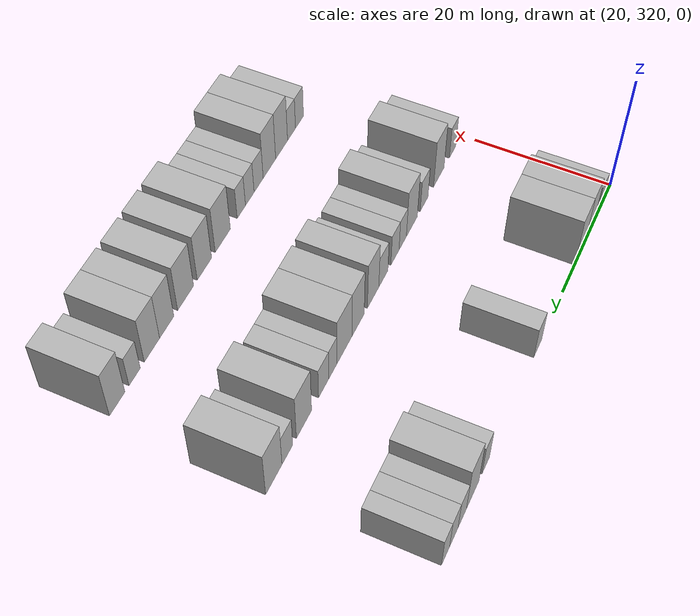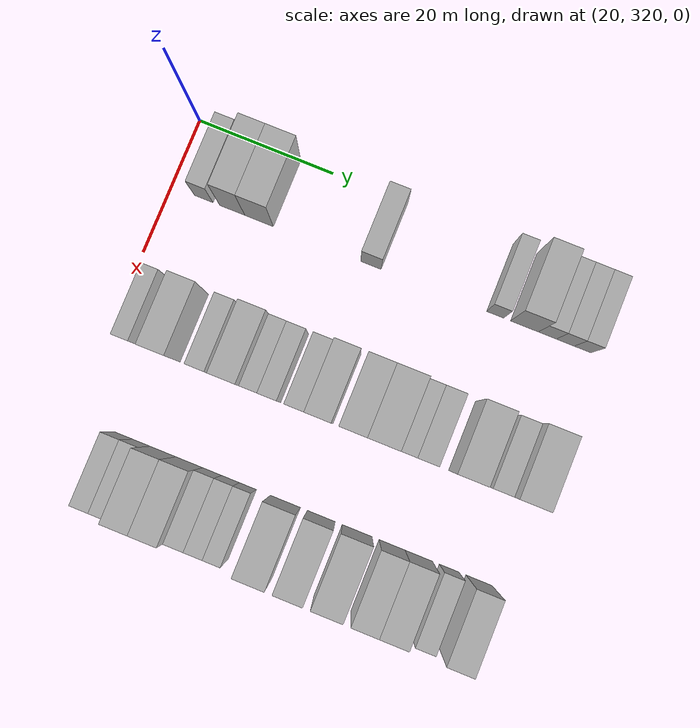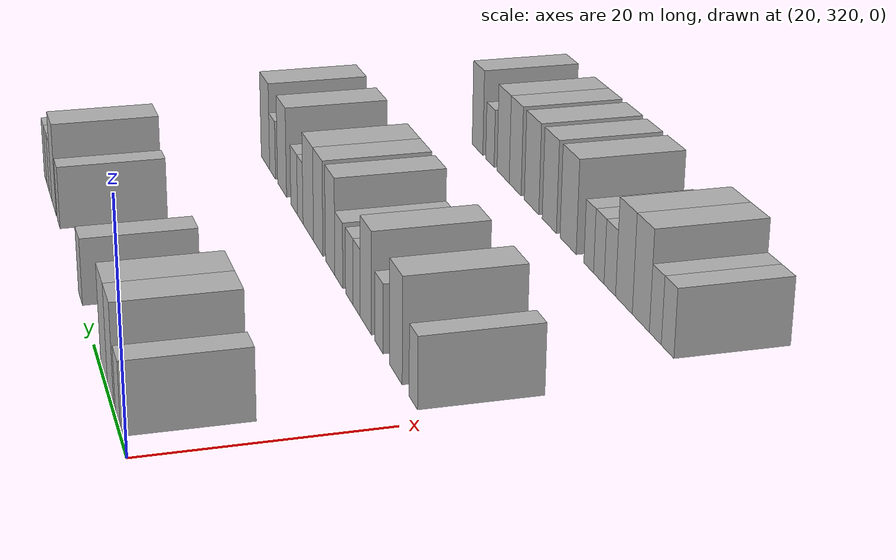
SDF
<sdf version="1.6">
 <world name="default">
  <model name="building_171">
   <static>1</static>
   <pose>25.0000 324.8100 0 0.000000 0.000000 0.000000</pose>
   <link name="link">
    <pose>0 0 3.00 0 0 0</pose>
    <collision name="collision"><geometry><box><size>10.0000 2.7737 6.0000</size></box></geometry></collision>
    <visual name="visual">
     <cast_shadows>0</cast_shadows>
     <geometry><box><size>10.0000 2.7737 6.0000</size></box></geometry>
     <material>
      <script>
       <uri>model://HANNAS_wall/materials/scripts</uri>
       <uri>model://HANNAS_wall/materials/textures</uri>
       <name>vrc/HANNAS_wall</name>
      </script>
     </material>
    </visual>
   </link>
  </model>
  <model name="building_172">
   <static>1</static>
   <pose>25.0000 329.0624 0 0.000000 0.000000 0.000000</pose>
   <link name="link">
    <pose>0 0 4.50 0 0 0</pose>
    <collision name="collision"><geometry><box><size>10.0000 3.7311 9.0000</size></box></geometry></collision>
    <visual name="visual">
     <cast_shadows>0</cast_shadows>
     <geometry><box><size>10.0000 3.7311 9.0000</size></box></geometry>
     <material>
      <script>
       <uri>model://HANNAS_wall/materials/scripts</uri>
       <uri>model://HANNAS_wall/materials/textures</uri>
       <name>vrc/HANNAS_wall</name>
      </script>
     </material>
    </visual>
   </link>
  </model>
  <model name="building_173">
   <static>1</static>
   <pose>25.0000 333.0505 0 0.000000 0.000000 0.000000</pose>
   <link name="link">
    <pose>0 0 4.50 0 0 0</pose>
    <collision name="collision"><geometry><box><size>10.0000 4.2452 9.0000</size></box></geometry></collision>
    <visual name="visual">
     <cast_shadows>0</cast_shadows>
     <geometry><box><size>10.0000 4.2452 9.0000</size></box></geometry>
     <material>
      <script>
       <uri>model://HANNAS_wall/materials/scripts</uri>
       <uri>model://HANNAS_wall/materials/textures</uri>
       <name>vrc/HANNAS_wall</name>
      </script>
     </material>
    </visual>
   </link>
  </model>
  <model name="building_174">
   <static>1</static>
   <pose>25.0000 349.6298 0 0.000000 0.000000 0.000000</pose>
   <link name="link">
    <pose>0 0 3.00 0 0 0</pose>
    <collision name="collision"><geometry><box><size>10.0000 2.9711 6.0000</size></box></geometry></collision>
    <visual name="visual">
     <cast_shadows>0</cast_shadows>
     <geometry><box><size>10.0000 2.9711 6.0000</size></box></geometry>
     <material>
      <script>
       <uri>model://HANNAS_wall/materials/scripts</uri>
       <uri>model://HANNAS_wall/materials/textures</uri>
       <name>vrc/HANNAS_wall</name>
      </script>
     </material>
    </visual>
   </link>
  </model>
  <model name="building_175">
   <static>1</static>
   <pose>25.0000 367.8563 0 0.000000 0.000000 0.000000</pose>
   <link name="link">
    <pose>0 0 3.00 0 0 0</pose>
    <collision name="collision"><geometry><box><size>10.0000 2.4939 6.0000</size></box></geometry></collision>
    <visual name="visual">
     <cast_shadows>0</cast_shadows>
     <geometry><box><size>10.0000 2.4939 6.0000</size></box></geometry>
     <material>
      <script>
       <uri>model://HANNAS_wall/materials/scripts</uri>
       <uri>model://HANNAS_wall/materials/textures</uri>
       <name>vrc/HANNAS_wall</name>
      </script>
     </material>
    </visual>
   </link>
  </model>
  <model name="building_176">
   <static>1</static>
   <pose>25.0000 372.1307 0 0.000000 0.000000 0.000000</pose>
   <link name="link">
    <pose>0 0 4.50 0 0 0</pose>
    <collision name="collision"><geometry><box><size>10.0000 4.0548 9.0000</size></box></geometry></collision>
    <visual name="visual">
     <cast_shadows>0</cast_shadows>
     <geometry><box><size>10.0000 4.0548 9.0000</size></box></geometry>
     <material>
      <script>
       <uri>model://HANNAS_wall/materials/scripts</uri>
       <uri>model://HANNAS_wall/materials/textures</uri>
       <name>vrc/HANNAS_wall</name>
      </script>
     </material>
    </visual>
   </link>
  </model>
  <model name="building_177">
   <static>1</static>
   <pose>25.0000 375.4648 0 0.000000 0.000000 0.000000</pose>
   <link name="link">
    <pose>0 0 3.00 0 0 0</pose>
    <collision name="collision"><geometry><box><size>10.0000 2.6135 6.0000</size></box></geometry></collision>
    <visual name="visual">
     <cast_shadows>0</cast_shadows>
     <geometry><box><size>10.0000 2.6135 6.0000</size></box></geometry>
     <material>
      <script>
       <uri>model://HANNAS_wall/materials/scripts</uri>
       <uri>model://HANNAS_wall/materials/textures</uri>
       <name>vrc/HANNAS_wall</name>
      </script>
     </material>
    </visual>
   </link>
  </model>
  <model name="building_178">
   <static>1</static>
   <pose>25.0000 378.0670 0 0.000000 0.000000 0.000000</pose>
   <link name="link">
    <pose>0 0 3.00 0 0 0</pose>
    <collision name="collision"><geometry><box><size>10.0000 2.5909 6.0000</size></box></geometry></collision>
    <visual name="visual">
     <cast_shadows>0</cast_shadows>
     <geometry><box><size>10.0000 2.5909 6.0000</size></box></geometry>
     <material>
      <script>
       <uri>model://HANNAS_wall/materials/scripts</uri>
       <uri>model://HANNAS_wall/materials/textures</uri>
       <name>vrc/HANNAS_wall</name>
      </script>
     </material>
    </visual>
   </link>
  </model>
  <model name="building_179">
   <static>1</static>
   <pose>25.0000 380.5888 0 0.000000 0.000000 0.000000</pose>
   <link name="link">
    <pose>0 0 3.00 0 0 0</pose>
    <collision name="collision"><geometry><box><size>10.0000 2.4526 6.0000</size></box></geometry></collision>
    <visual name="visual">
     <cast_shadows>0</cast_shadows>
     <geometry><box><size>10.0000 2.4526 6.0000</size></box></geometry>
     <material>
      <script>
       <uri>model://HANNAS_wall/materials/scripts</uri>
       <uri>model://HANNAS_wall/materials/textures</uri>
       <name>vrc/HANNAS_wall</name>
      </script>
     </material>
    </visual>
   </link>
  </model>
  <model name="building_350">
   <static>1</static>
   <pose>47.0000 323.4926 0 0.000000 0.000000 0.000000</pose>
   <link name="link">
    <pose>0 0 3.00 0 0 0</pose>
    <collision name="collision"><geometry><box><size>10.0000 2.4269 6.0000</size></box></geometry></collision>
    <visual name="visual">
     <cast_shadows>0</cast_shadows>
     <geometry><box><size>10.0000 2.4269 6.0000</size></box></geometry>
     <material>
      <script>
       <uri>model://HANNAS_wall/materials/scripts</uri>
       <uri>model://HANNAS_wall/materials/textures</uri>
       <name>vrc/HANNAS_wall</name>
      </script>
     </material>
    </visual>
   </link>
  </model>
  <model name="building_351">
   <static>1</static>
   <pose>47.0000 328.6227 0 0.000000 0.000000 0.000000</pose>
   <link name="link">
    <pose>0 0 4.50 0 0 0</pose>
    <collision name="collision"><geometry><box><size>10.0000 3.8331 9.0000</size></box></geometry></collision>
    <visual name="visual">
     <cast_shadows>0</cast_shadows>
     <geometry><box><size>10.0000 3.8331 9.0000</size></box></geometry>
     <material>
      <script>
       <uri>model://HANNAS_wall/materials/scripts</uri>
       <uri>model://HANNAS_wall/materials/textures</uri>
       <name>vrc/HANNAS_wall</name>
      </script>
     </material>
    </visual>
   </link>
  </model>
  <model name="building_352">
   <static>1</static>
   <pose>47.0000 333.9192 0 0.000000 0.000000 0.000000</pose>
   <link name="link">
    <pose>0 0 3.00 0 0 0</pose>
    <collision name="collision"><geometry><box><size>10.0000 2.7599 6.0000</size></box></geometry></collision>
    <visual name="visual">
     <cast_shadows>0</cast_shadows>
     <geometry><box><size>10.0000 2.7599 6.0000</size></box></geometry>
     <material>
      <script>
       <uri>model://HANNAS_wall/materials/scripts</uri>
       <uri>model://HANNAS_wall/materials/textures</uri>
       <name>vrc/HANNAS_wall</name>
      </script>
     </material>
    </visual>
   </link>
  </model>
  <model name="building_353">
   <static>1</static>
   <pose>47.0000 338.1962 0 0.000000 0.000000 0.000000</pose>
   <link name="link">
    <pose>0 0 4.50 0 0 0</pose>
    <collision name="collision"><geometry><box><size>10.0000 3.7942 9.0000</size></box></geometry></collision>
    <visual name="visual">
     <cast_shadows>0</cast_shadows>
     <geometry><box><size>10.0000 3.7942 9.0000</size></box></geometry>
     <material>
      <script>
       <uri>model://HANNAS_wall/materials/scripts</uri>
       <uri>model://HANNAS_wall/materials/textures</uri>
       <name>vrc/HANNAS_wall</name>
      </script>
     </material>
    </visual>
   </link>
  </model>
  <model name="building_354">
   <static>1</static>
   <pose>47.0000 341.3433 0 0.000000 0.000000 0.000000</pose>
   <link name="link">
    <pose>0 0 3.00 0 0 0</pose>
    <collision name="collision"><geometry><box><size>10.0000 2.5001 6.0000</size></box></geometry></collision>
    <visual name="visual">
     <cast_shadows>0</cast_shadows>
     <geometry><box><size>10.0000 2.5001 6.0000</size></box></geometry>
     <material>
      <script>
       <uri>model://HANNAS_wall/materials/scripts</uri>
       <uri>model://HANNAS_wall/materials/textures</uri>
       <name>vrc/HANNAS_wall</name>
      </script>
     </material>
    </visual>
   </link>
  </model>
  <model name="building_355">
   <static>1</static>
   <pose>47.0000 343.9466 0 0.000000 0.000000 0.000000</pose>
   <link name="link">
    <pose>0 0 3.00 0 0 0</pose>
    <collision name="collision"><geometry><box><size>10.0000 2.7065 6.0000</size></box></geometry></collision>
    <visual name="visual">
     <cast_shadows>0</cast_shadows>
     <geometry><box><size>10.0000 2.7065 6.0000</size></box></geometry>
     <material>
      <script>
       <uri>model://HANNAS_wall/materials/scripts</uri>
       <uri>model://HANNAS_wall/materials/textures</uri>
       <name>vrc/HANNAS_wall</name>
      </script>
     </material>
    </visual>
   </link>
  </model>
  <model name="building_356">
   <static>1</static>
   <pose>47.0000 347.7876 0 0.000000 0.000000 0.000000</pose>
   <link name="link">
    <pose>0 0 3.00 0 0 0</pose>
    <collision name="collision"><geometry><box><size>10.0000 2.9754 6.0000</size></box></geometry></collision>
    <visual name="visual">
     <cast_shadows>0</cast_shadows>
     <geometry><box><size>10.0000 2.9754 6.0000</size></box></geometry>
     <material>
      <script>
       <uri>model://HANNAS_wall/materials/scripts</uri>
       <uri>model://HANNAS_wall/materials/textures</uri>
       <name>vrc/HANNAS_wall</name>
      </script>
     </material>
    </visual>
   </link>
  </model>
  <model name="building_357">
   <static>1</static>
   <pose>47.0000 351.0989 0 0.000000 0.000000 0.000000</pose>
   <link name="link">
    <pose>0 0 4.50 0 0 0</pose>
    <collision name="collision"><geometry><box><size>10.0000 3.6473 9.0000</size></box></geometry></collision>
    <visual name="visual">
     <cast_shadows>0</cast_shadows>
     <geometry><box><size>10.0000 3.6473 9.0000</size></box></geometry>
     <material>
      <script>
       <uri>model://HANNAS_wall/materials/scripts</uri>
       <uri>model://HANNAS_wall/materials/textures</uri>
       <name>vrc/HANNAS_wall</name>
      </script>
     </material>
    </visual>
   </link>
  </model>
  <model name="building_358">
   <static>1</static>
   <pose>47.0000 355.8356 0 0.000000 0.000000 0.000000</pose>
   <link name="link">
    <pose>0 0 4.50 0 0 0</pose>
    <collision name="collision"><geometry><box><size>10.0000 3.8260 9.0000</size></box></geometry></collision>
    <visual name="visual">
     <cast_shadows>0</cast_shadows>
     <geometry><box><size>10.0000 3.8260 9.0000</size></box></geometry>
     <material>
      <script>
       <uri>model://HANNAS_wall/materials/scripts</uri>
       <uri>model://HANNAS_wall/materials/textures</uri>
       <name>vrc/HANNAS_wall</name>
      </script>
     </material>
    </visual>
   </link>
  </model>
  <model name="building_359">
   <static>1</static>
   <pose>47.0000 359.9868 0 0.000000 0.000000 0.000000</pose>
   <link name="link">
    <pose>0 0 4.50 0 0 0</pose>
    <collision name="collision"><geometry><box><size>10.0000 4.4764 9.0000</size></box></geometry></collision>
    <visual name="visual">
     <cast_shadows>0</cast_shadows>
     <geometry><box><size>10.0000 4.4764 9.0000</size></box></geometry>
     <material>
      <script>
       <uri>model://HANNAS_wall/materials/scripts</uri>
       <uri>model://HANNAS_wall/materials/textures</uri>
       <name>vrc/HANNAS_wall</name>
      </script>
     </material>
    </visual>
   </link>
  </model>
  <model name="building_360">
   <static>1</static>
   <pose>47.0000 363.4442 0 0.000000 0.000000 0.000000</pose>
   <link name="link">
    <pose>0 0 3.00 0 0 0</pose>
    <collision name="collision"><geometry><box><size>10.0000 2.4384 6.0000</size></box></geometry></collision>
    <visual name="visual">
     <cast_shadows>0</cast_shadows>
     <geometry><box><size>10.0000 2.4384 6.0000</size></box></geometry>
     <material>
      <script>
       <uri>model://HANNAS_wall/materials/scripts</uri>
       <uri>model://HANNAS_wall/materials/textures</uri>
       <name>vrc/HANNAS_wall</name>
      </script>
     </material>
    </visual>
   </link>
  </model>
  <model name="building_361">
   <static>1</static>
   <pose>47.0000 366.1602 0 0.000000 0.000000 0.000000</pose>
   <link name="link">
    <pose>0 0 3.00 0 0 0</pose>
    <collision name="collision"><geometry><box><size>10.0000 2.9937 6.0000</size></box></geometry></collision>
    <visual name="visual">
     <cast_shadows>0</cast_shadows>
     <geometry><box><size>10.0000 2.9937 6.0000</size></box></geometry>
     <material>
      <script>
       <uri>model://HANNAS_wall/materials/scripts</uri>
       <uri>model://HANNAS_wall/materials/textures</uri>
       <name>vrc/HANNAS_wall</name>
      </script>
     </material>
    </visual>
   </link>
  </model>
  <model name="building_362">
   <static>1</static>
   <pose>47.0000 371.7882 0 0.000000 0.000000 0.000000</pose>
   <link name="link">
    <pose>0 0 4.50 0 0 0</pose>
    <collision name="collision"><geometry><box><size>10.0000 4.2623 9.0000</size></box></geometry></collision>
    <visual name="visual">
     <cast_shadows>0</cast_shadows>
     <geometry><box><size>10.0000 4.2623 9.0000</size></box></geometry>
     <material>
      <script>
       <uri>model://HANNAS_wall/materials/scripts</uri>
       <uri>model://HANNAS_wall/materials/textures</uri>
       <name>vrc/HANNAS_wall</name>
      </script>
     </material>
    </visual>
   </link>
  </model>
  <model name="building_363">
   <static>1</static>
   <pose>47.0000 376.3739 0 0.000000 0.000000 0.000000</pose>
   <link name="link">
    <pose>0 0 3.00 0 0 0</pose>
    <collision name="collision"><geometry><box><size>10.0000 2.9090 6.0000</size></box></geometry></collision>
    <visual name="visual">
     <cast_shadows>0</cast_shadows>
     <geometry><box><size>10.0000 2.9090 6.0000</size></box></geometry>
     <material>
      <script>
       <uri>model://HANNAS_wall/materials/scripts</uri>
       <uri>model://HANNAS_wall/materials/textures</uri>
       <name>vrc/HANNAS_wall</name>
      </script>
     </material>
    </visual>
   </link>
  </model>
  <model name="building_364">
   <static>1</static>
   <pose>47.0000 380.0017 0 0.000000 0.000000 0.000000</pose>
   <link name="link">
    <pose>0 0 4.50 0 0 0</pose>
    <collision name="collision"><geometry><box><size>10.0000 4.3467 9.0000</size></box></geometry></collision>
    <visual name="visual">
     <cast_shadows>0</cast_shadows>
     <geometry><box><size>10.0000 4.3467 9.0000</size></box></geometry>
     <material>
      <script>
       <uri>model://HANNAS_wall/materials/scripts</uri>
       <uri>model://HANNAS_wall/materials/textures</uri>
       <name>vrc/HANNAS_wall</name>
      </script>
     </material>
    </visual>
   </link>
  </model>
  <model name="building_535">
   <static>1</static>
   <pose>69.0000 327.3344 0 0.000000 0.000000 0.000000</pose>
   <link name="link">
    <pose>0 0 3.00 0 0 0</pose>
    <collision name="collision"><geometry><box><size>10.0000 2.6322 6.0000</size></box></geometry></collision>
    <visual name="visual">
     <cast_shadows>0</cast_shadows>
     <geometry><box><size>10.0000 2.6322 6.0000</size></box></geometry>
     <material>
      <script>
       <uri>model://HANNAS_wall/materials/scripts</uri>
       <uri>model://HANNAS_wall/materials/textures</uri>
       <name>vrc/HANNAS_wall</name>
      </script>
     </material>
    </visual>
   </link>
  </model>
  <model name="building_536">
   <static>1</static>
   <pose>69.0000 329.9332 0 0.000000 0.000000 0.000000</pose>
   <link name="link">
    <pose>0 0 3.00 0 0 0</pose>
    <collision name="collision"><geometry><box><size>10.0000 2.5656 6.0000</size></box></geometry></collision>
    <visual name="visual">
     <cast_shadows>0</cast_shadows>
     <geometry><box><size>10.0000 2.5656 6.0000</size></box></geometry>
     <material>
      <script>
       <uri>model://HANNAS_wall/materials/scripts</uri>
       <uri>model://HANNAS_wall/materials/textures</uri>
       <name>vrc/HANNAS_wall</name>
      </script>
     </material>
    </visual>
   </link>
  </model>
  <model name="building_537">
   <static>1</static>
   <pose>69.0000 333.1134 0 0.000000 0.000000 0.000000</pose>
   <link name="link">
    <pose>0 0 4.50 0 0 0</pose>
    <collision name="collision"><geometry><box><size>10.0000 3.7947 9.0000</size></box></geometry></collision>
    <visual name="visual">
     <cast_shadows>0</cast_shadows>
     <geometry><box><size>10.0000 3.7947 9.0000</size></box></geometry>
     <material>
      <script>
       <uri>model://HANNAS_wall/materials/scripts</uri>
       <uri>model://HANNAS_wall/materials/textures</uri>
       <name>vrc/HANNAS_wall</name>
      </script>
     </material>
    </visual>
   </link>
  </model>
  <model name="building_538">
   <static>1</static>
   <pose>69.0000 336.9512 0 0.000000 0.000000 0.000000</pose>
   <link name="link">
    <pose>0 0 4.50 0 0 0</pose>
    <collision name="collision"><geometry><box><size>10.0000 3.8808 9.0000</size></box></geometry></collision>
    <visual name="visual">
     <cast_shadows>0</cast_shadows>
     <geometry><box><size>10.0000 3.8808 9.0000</size></box></geometry>
     <material>
      <script>
       <uri>model://HANNAS_wall/materials/scripts</uri>
       <uri>model://HANNAS_wall/materials/textures</uri>
       <name>vrc/HANNAS_wall</name>
      </script>
     </material>
    </visual>
   </link>
  </model>
  <model name="building_539">
   <static>1</static>
   <pose>69.0000 340.2825 0 0.000000 0.000000 0.000000</pose>
   <link name="link">
    <pose>0 0 3.00 0 0 0</pose>
    <collision name="collision"><geometry><box><size>10.0000 2.7818 6.0000</size></box></geometry></collision>
    <visual name="visual">
     <cast_shadows>0</cast_shadows>
     <geometry><box><size>10.0000 2.7818 6.0000</size></box></geometry>
     <material>
      <script>
       <uri>model://HANNAS_wall/materials/scripts</uri>
       <uri>model://HANNAS_wall/materials/textures</uri>
       <name>vrc/HANNAS_wall</name>
      </script>
     </material>
    </visual>
   </link>
  </model>
  <model name="building_540">
   <static>1</static>
   <pose>69.0000 342.9698 0 0.000000 0.000000 0.000000</pose>
   <link name="link">
    <pose>0 0 3.00 0 0 0</pose>
    <collision name="collision"><geometry><box><size>10.0000 2.5928 6.0000</size></box></geometry></collision>
    <visual name="visual">
     <cast_shadows>0</cast_shadows>
     <geometry><box><size>10.0000 2.5928 6.0000</size></box></geometry>
     <material>
      <script>
       <uri>model://HANNAS_wall/materials/scripts</uri>
       <uri>model://HANNAS_wall/materials/textures</uri>
       <name>vrc/HANNAS_wall</name>
      </script>
     </material>
    </visual>
   </link>
  </model>
  <model name="building_541">
   <static>1</static>
   <pose>69.0000 345.4951 0 0.000000 0.000000 0.000000</pose>
   <link name="link">
    <pose>0 0 3.00 0 0 0</pose>
    <collision name="collision"><geometry><box><size>10.0000 2.4579 6.0000</size></box></geometry></collision>
    <visual name="visual">
     <cast_shadows>0</cast_shadows>
     <geometry><box><size>10.0000 2.4579 6.0000</size></box></geometry>
     <material>
      <script>
       <uri>model://HANNAS_wall/materials/scripts</uri>
       <uri>model://HANNAS_wall/materials/textures</uri>
       <name>vrc/HANNAS_wall</name>
      </script>
     </material>
    </visual>
   </link>
  </model>
  <model name="building_542">
   <static>1</static>
   <pose>69.0000 350.9092 0 0.000000 0.000000 0.000000</pose>
   <link name="link">
    <pose>0 0 4.50 0 0 0</pose>
    <collision name="collision"><geometry><box><size>10.0000 4.3702 9.0000</size></box></geometry></collision>
    <visual name="visual">
     <cast_shadows>0</cast_shadows>
     <geometry><box><size>10.0000 4.3702 9.0000</size></box></geometry>
     <material>
      <script>
       <uri>model://HANNAS_wall/materials/scripts</uri>
       <uri>model://HANNAS_wall/materials/textures</uri>
       <name>vrc/HANNAS_wall</name>
      </script>
     </material>
    </visual>
   </link>
  </model>
  <model name="building_543">
   <static>1</static>
   <pose>69.0000 356.1016 0 0.000000 0.000000 0.000000</pose>
   <link name="link">
    <pose>0 0 4.50 0 0 0</pose>
    <collision name="collision"><geometry><box><size>10.0000 4.0147 9.0000</size></box></geometry></collision>
    <visual name="visual">
     <cast_shadows>0</cast_shadows>
     <geometry><box><size>10.0000 4.0147 9.0000</size></box></geometry>
     <material>
      <script>
       <uri>model://HANNAS_wall/materials/scripts</uri>
       <uri>model://HANNAS_wall/materials/textures</uri>
       <name>vrc/HANNAS_wall</name>
      </script>
     </material>
    </visual>
   </link>
  </model>
  <model name="building_544">
   <static>1</static>
   <pose>69.0000 361.2580 0 0.000000 0.000000 0.000000</pose>
   <link name="link">
    <pose>0 0 4.50 0 0 0</pose>
    <collision name="collision"><geometry><box><size>10.0000 4.2981 9.0000</size></box></geometry></collision>
    <visual name="visual">
     <cast_shadows>0</cast_shadows>
     <geometry><box><size>10.0000 4.2981 9.0000</size></box></geometry>
     <material>
      <script>
       <uri>model://HANNAS_wall/materials/scripts</uri>
       <uri>model://HANNAS_wall/materials/textures</uri>
       <name>vrc/HANNAS_wall</name>
      </script>
     </material>
    </visual>
   </link>
  </model>
  <model name="building_545">
   <static>1</static>
   <pose>69.0000 366.2707 0 0.000000 0.000000 0.000000</pose>
   <link name="link">
    <pose>0 0 4.50 0 0 0</pose>
    <collision name="collision"><geometry><box><size>10.0000 3.7273 9.0000</size></box></geometry></collision>
    <visual name="visual">
     <cast_shadows>0</cast_shadows>
     <geometry><box><size>10.0000 3.7273 9.0000</size></box></geometry>
     <material>
      <script>
       <uri>model://HANNAS_wall/materials/scripts</uri>
       <uri>model://HANNAS_wall/materials/textures</uri>
       <name>vrc/HANNAS_wall</name>
      </script>
     </material>
    </visual>
   </link>
  </model>
  <model name="building_546">
   <static>1</static>
   <pose>69.0000 370.0927 0 0.000000 0.000000 0.000000</pose>
   <link name="link">
    <pose>0 0 4.50 0 0 0</pose>
    <collision name="collision"><geometry><box><size>10.0000 3.9167 9.0000</size></box></geometry></collision>
    <visual name="visual">
     <cast_shadows>0</cast_shadows>
     <geometry><box><size>10.0000 3.9167 9.0000</size></box></geometry>
     <material>
      <script>
       <uri>model://HANNAS_wall/materials/scripts</uri>
       <uri>model://HANNAS_wall/materials/textures</uri>
       <name>vrc/HANNAS_wall</name>
      </script>
     </material>
    </visual>
   </link>
  </model>
  <model name="building_547">
   <static>1</static>
   <pose>69.0000 374.4525 0 0.000000 0.000000 0.000000</pose>
   <link name="link">
    <pose>0 0 3.00 0 0 0</pose>
    <collision name="collision"><geometry><box><size>10.0000 2.8029 6.0000</size></box></geometry></collision>
    <visual name="visual">
     <cast_shadows>0</cast_shadows>
     <geometry><box><size>10.0000 2.8029 6.0000</size></box></geometry>
     <material>
      <script>
       <uri>model://HANNAS_wall/materials/scripts</uri>
       <uri>model://HANNAS_wall/materials/textures</uri>
       <name>vrc/HANNAS_wall</name>
      </script>
     </material>
    </visual>
   </link>
  </model>
  <model name="building_548">
   <static>1</static>
   <pose>69.0000 378.7186 0 0.000000 0.000000 0.000000</pose>
   <link name="link">
    <pose>0 0 4.50 0 0 0</pose>
    <collision name="collision"><geometry><box><size>10.0000 3.7294 9.0000</size></box></geometry></collision>
    <visual name="visual">
     <cast_shadows>0</cast_shadows>
     <geometry><box><size>10.0000 3.7294 9.0000</size></box></geometry>
     <material>
      <script>
       <uri>model://HANNAS_wall/materials/scripts</uri>
       <uri>model://HANNAS_wall/materials/textures</uri>
       <name>vrc/HANNAS_wall</name>
      </script>
     </material>
    </visual>
   </link>
  </model>
 </world>
</sdf>
